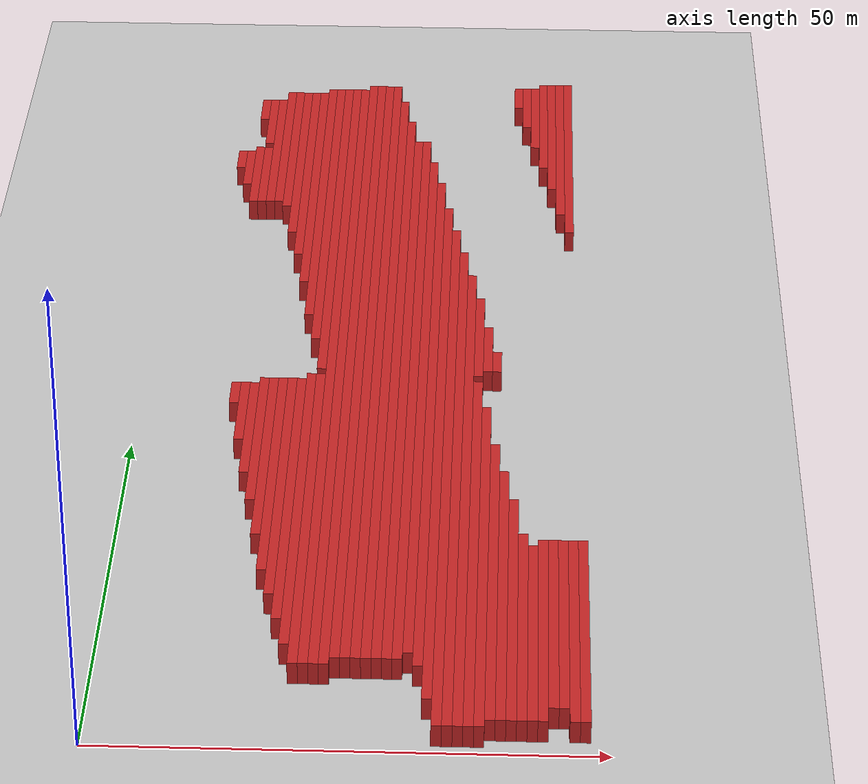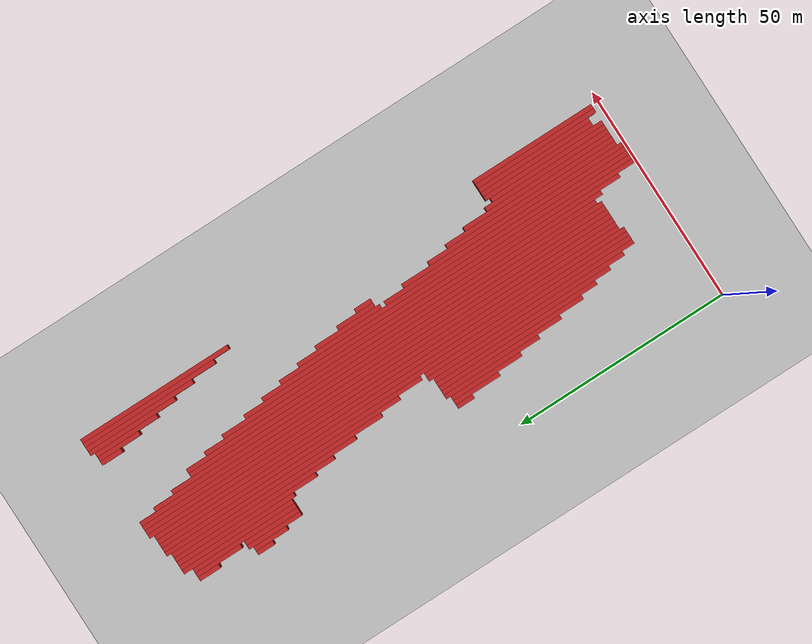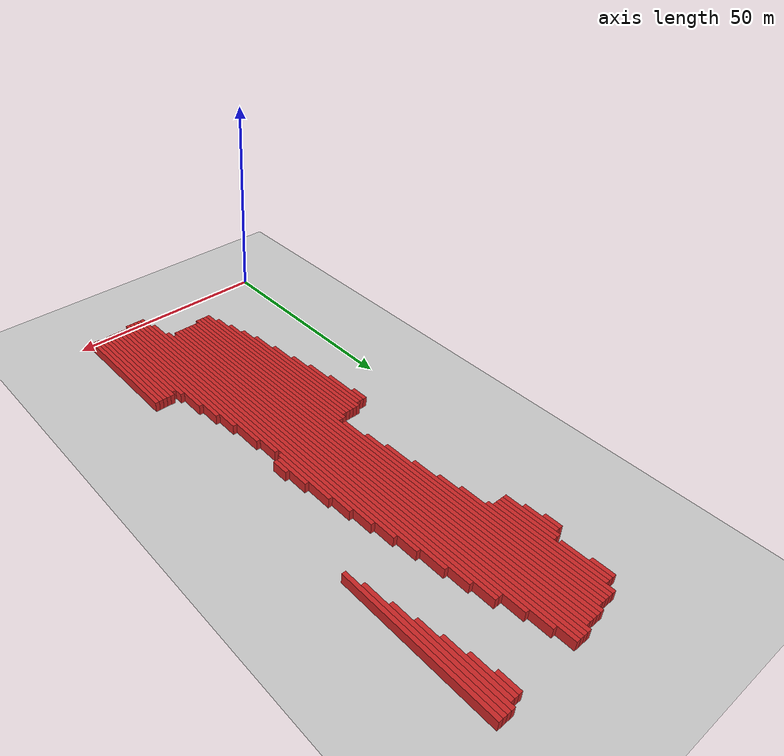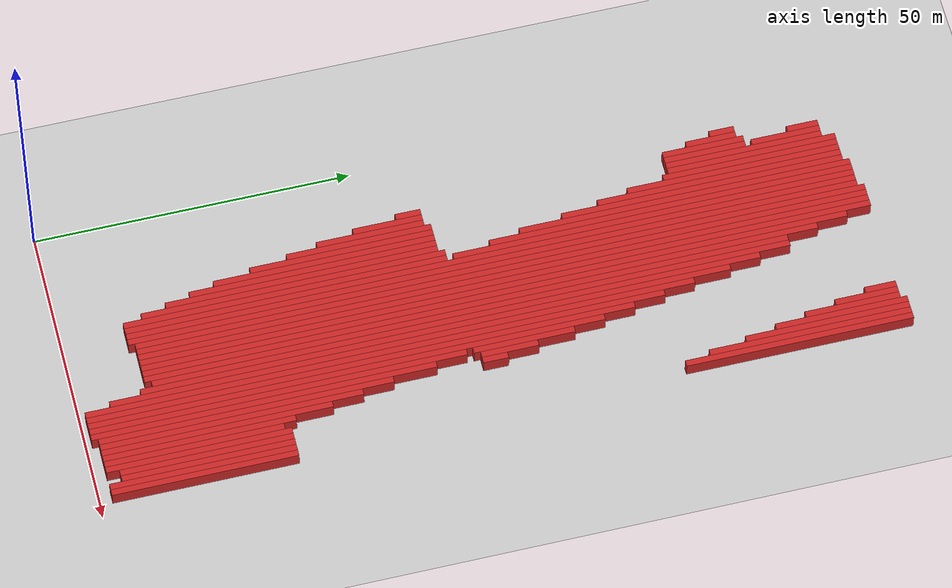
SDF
<sdf version="1.4">
 <world name="1_wall">
  <model name="ground_plane">
   <static>1</static>
   <link name="link">
    <collision name="collision">
     <geometry><plane><normal>0 0 1</normal><size>1000 1000</size></plane></geometry>
     <surface><friction><ode><mu>100</mu><mu2>50</mu2></ode></friction></surface>
    </collision>
    <visual name="visual">
     <cast_shadows>0</cast_shadows>
     <geometry><plane><normal>0 0 1</normal><size>10000 10000</size></plane></geometry>
     <material>
      <script><uri>file://media/materials/scripts/gazebo.material</uri><name>Gazebo/Grey</name></script>
     </material>
    </visual>
    <velocity_decay><linear>0</linear><angular>0</angular></velocity_decay>
   </link>
  </model>
  <model name="Wall_0">
   <static>1</static>
   <link name="Wall_0">
    <collision name="Wall_Collision_0">
     <geometry><box><size>4.0 1.0 2.5</size></box></geometry>
     <pose>0 0 1.25 0 -0 0</pose>
    </collision>
    <visual name="Wall_Visual_0">
     <pose>0 0 1.25 0 -0 0</pose>
     <geometry><box><size>4.0 1.0 2.5</size></box></geometry>
     <material>
      <script><uri>file://media/materials/scripts/gazebo.material</uri><name>Gazebo/Red</name></script>
     </material>
    </visual>
    <velocity_decay><linear>0</linear><angular>0</angular></velocity_decay>
    <pose>7.5 108.0 0 0 0 1.5707963267948966</pose>
   </link>
  </model>
  <model name="Wall_1">
   <static>1</static>
   <link name="Wall_1">
    <collision name="Wall_Collision_1">
     <geometry><box><size>8.0 1.0 2.5</size></box></geometry>
     <pose>0 0 1.25 0 -0 0</pose>
    </collision>
    <visual name="Wall_Visual_1">
     <pose>0 0 1.25 0 -0 0</pose>
     <geometry><box><size>8.0 1.0 2.5</size></box></geometry>
     <material>
      <script><uri>file://media/materials/scripts/gazebo.material</uri><name>Gazebo/Red</name></script>
     </material>
    </visual>
    <velocity_decay><linear>0</linear><angular>0</angular></velocity_decay>
    <pose>8.5 106.0 0 0 0 1.5707963267948966</pose>
   </link>
  </model>
  <model name="Wall_2">
   <static>1</static>
   <link name="Wall_2">
    <collision name="Wall_Collision_2">
     <geometry><box><size>13.0 1.0 2.5</size></box></geometry>
     <pose>0 0 1.25 0 -0 0</pose>
    </collision>
    <visual name="Wall_Visual_2">
     <pose>0 0 1.25 0 -0 0</pose>
     <geometry><box><size>13.0 1.0 2.5</size></box></geometry>
     <material>
      <script><uri>file://media/materials/scripts/gazebo.material</uri><name>Gazebo/Red</name></script>
     </material>
    </visual>
    <velocity_decay><linear>0</linear><angular>0</angular></velocity_decay>
    <pose>9.5 104.5 0 0 0 1.5707963267948966</pose>
   </link>
  </model>
  <model name="Wall_3">
   <static>1</static>
   <link name="Wall_3">
    <collision name="Wall_Collision_3">
     <geometry><box><size>5.0 1.0 2.5</size></box></geometry>
     <pose>0 0 1.25 0 -0 0</pose>
    </collision>
    <visual name="Wall_Visual_3">
     <pose>0 0 1.25 0 -0 0</pose>
     <geometry><box><size>5.0 1.0 2.5</size></box></geometry>
     <material>
      <script><uri>file://media/materials/scripts/gazebo.material</uri><name>Gazebo/Red</name></script>
     </material>
    </visual>
    <velocity_decay><linear>0</linear><angular>0</angular></velocity_decay>
    <pose>9.5 120.5 0 0 0 1.5707963267948966</pose>
   </link>
  </model>
  <model name="Wall_4">
   <static>1</static>
   <link name="Wall_4">
    <collision name="Wall_Collision_4">
     <geometry><box><size>4.0 1.0 2.5</size></box></geometry>
     <pose>0 0 1.25 0 -0 0</pose>
    </collision>
    <visual name="Wall_Visual_4">
     <pose>0 0 1.25 0 -0 0</pose>
     <geometry><box><size>4.0 1.0 2.5</size></box></geometry>
     <material>
      <script><uri>file://media/materials/scripts/gazebo.material</uri><name>Gazebo/Red</name></script>
     </material>
    </visual>
    <velocity_decay><linear>0</linear><angular>0</angular></velocity_decay>
    <pose>10.5 57.0 0 0 0 1.5707963267948966</pose>
   </link>
  </model>
  <model name="Wall_5">
   <static>1</static>
   <link name="Wall_5">
    <collision name="Wall_Collision_5">
     <geometry><box><size>13.0 1.0 2.5</size></box></geometry>
     <pose>0 0 1.25 0 -0 0</pose>
    </collision>
    <visual name="Wall_Visual_5">
     <pose>0 0 1.25 0 -0 0</pose>
     <geometry><box><size>13.0 1.0 2.5</size></box></geometry>
     <material>
      <script><uri>file://media/materials/scripts/gazebo.material</uri><name>Gazebo/Red</name></script>
     </material>
    </visual>
    <velocity_decay><linear>0</linear><angular>0</angular></velocity_decay>
    <pose>10.5 104.5 0 0 0 1.5707963267948966</pose>
   </link>
  </model>
  <model name="Wall_6">
   <static>1</static>
   <link name="Wall_6">
    <collision name="Wall_Collision_6">
     <geometry><box><size>11.0 1.0 2.5</size></box></geometry>
     <pose>0 0 1.25 0 -0 0</pose>
    </collision>
    <visual name="Wall_Visual_6">
     <pose>0 0 1.25 0 -0 0</pose>
     <geometry><box><size>11.0 1.0 2.5</size></box></geometry>
     <material>
      <script><uri>file://media/materials/scripts/gazebo.material</uri><name>Gazebo/Red</name></script>
     </material>
    </visual>
    <velocity_decay><linear>0</linear><angular>0</angular></velocity_decay>
    <pose>10.5 117.5 0 0 0 1.5707963267948966</pose>
   </link>
  </model>
  <model name="Wall_7">
   <static>1</static>
   <link name="Wall_7">
    <collision name="Wall_Collision_7">
     <geometry><box><size>11.0 1.0 2.5</size></box></geometry>
     <pose>0 0 1.25 0 -0 0</pose>
    </collision>
    <visual name="Wall_Visual_7">
     <pose>0 0 1.25 0 -0 0</pose>
     <geometry><box><size>11.0 1.0 2.5</size></box></geometry>
     <material>
      <script><uri>file://media/materials/scripts/gazebo.material</uri><name>Gazebo/Red</name></script>
     </material>
    </visual>
    <velocity_decay><linear>0</linear><angular>0</angular></velocity_decay>
    <pose>11.5 53.5 0 0 0 1.5707963267948966</pose>
   </link>
  </model>
  <model name="Wall_8">
   <static>1</static>
   <link name="Wall_8">
    <collision name="Wall_Collision_8">
     <geometry><box><size>25.0 1.0 2.5</size></box></geometry>
     <pose>0 0 1.25 0 -0 0</pose>
    </collision>
    <visual name="Wall_Visual_8">
     <pose>0 0 1.25 0 -0 0</pose>
     <geometry><box><size>25.0 1.0 2.5</size></box></geometry>
     <material>
      <script><uri>file://media/materials/scripts/gazebo.material</uri><name>Gazebo/Red</name></script>
     </material>
    </visual>
    <velocity_decay><linear>0</linear><angular>0</angular></velocity_decay>
    <pose>11.5 110.5 0 0 0 1.5707963267948966</pose>
   </link>
  </model>
  <model name="Wall_9">
   <static>1</static>
   <link name="Wall_9">
    <collision name="Wall_Collision_9">
     <geometry><box><size>17.0 1.0 2.5</size></box></geometry>
     <pose>0 0 1.25 0 -0 0</pose>
    </collision>
    <visual name="Wall_Visual_9">
     <pose>0 0 1.25 0 -0 0</pose>
     <geometry><box><size>17.0 1.0 2.5</size></box></geometry>
     <material>
      <script><uri>file://media/materials/scripts/gazebo.material</uri><name>Gazebo/Red</name></script>
     </material>
    </visual>
    <velocity_decay><linear>0</linear><angular>0</angular></velocity_decay>
    <pose>12.5 50.5 0 0 0 1.5707963267948966</pose>
   </link>
  </model>
  <model name="Wall_10">
   <static>1</static>
   <link name="Wall_10">
    <collision name="Wall_Collision_10">
     <geometry><box><size>27.0 1.0 2.5</size></box></geometry>
     <pose>0 0 1.25 0 -0 0</pose>
    </collision>
    <visual name="Wall_Visual_10">
     <pose>0 0 1.25 0 -0 0</pose>
     <geometry><box><size>27.0 1.0 2.5</size></box></geometry>
     <material>
      <script><uri>file://media/materials/scripts/gazebo.material</uri><name>Gazebo/Red</name></script>
     </material>
    </visual>
    <velocity_decay><linear>0</linear><angular>0</angular></velocity_decay>
    <pose>12.5 111.5 0 0 0 1.5707963267948966</pose>
   </link>
  </model>
  <model name="Wall_11">
   <static>1</static>
   <link name="Wall_11">
    <collision name="Wall_Collision_11">
     <geometry><box><size>23.0 1.0 2.5</size></box></geometry>
     <pose>0 0 1.25 0 -0 0</pose>
    </collision>
    <visual name="Wall_Visual_11">
     <pose>0 0 1.25 0 -0 0</pose>
     <geometry><box><size>23.0 1.0 2.5</size></box></geometry>
     <material>
      <script><uri>file://media/materials/scripts/gazebo.material</uri><name>Gazebo/Red</name></script>
     </material>
    </visual>
    <velocity_decay><linear>0</linear><angular>0</angular></velocity_decay>
    <pose>13.5 48.5 0 0 0 1.5707963267948966</pose>
   </link>
  </model>
  <model name="Wall_12">
   <static>1</static>
   <link name="Wall_12">
    <collision name="Wall_Collision_12">
     <geometry><box><size>28.0 1.0 2.5</size></box></geometry>
     <pose>0 0 1.25 0 -0 0</pose>
    </collision>
    <visual name="Wall_Visual_12">
     <pose>0 0 1.25 0 -0 0</pose>
     <geometry><box><size>28.0 1.0 2.5</size></box></geometry>
     <material>
      <script><uri>file://media/materials/scripts/gazebo.material</uri><name>Gazebo/Red</name></script>
     </material>
    </visual>
    <velocity_decay><linear>0</linear><angular>0</angular></velocity_decay>
    <pose>13.5 111.0 0 0 0 1.5707963267948966</pose>
   </link>
  </model>
  <model name="Wall_13">
   <static>1</static>
   <link name="Wall_13">
    <collision name="Wall_Collision_13">
     <geometry><box><size>29.0 1.0 2.5</size></box></geometry>
     <pose>0 0 1.25 0 -0 0</pose>
    </collision>
    <visual name="Wall_Visual_13">
     <pose>0 0 1.25 0 -0 0</pose>
     <geometry><box><size>29.0 1.0 2.5</size></box></geometry>
     <material>
      <script><uri>file://media/materials/scripts/gazebo.material</uri><name>Gazebo/Red</name></script>
     </material>
    </visual>
    <velocity_decay><linear>0</linear><angular>0</angular></velocity_decay>
    <pose>14.5 45.5 0 0 0 1.5707963267948966</pose>
   </link>
  </model>
  <model name="Wall_14">
   <static>1</static>
   <link name="Wall_14">
    <collision name="Wall_Collision_14">
     <geometry><box><size>34.0 1.0 2.5</size></box></geometry>
     <pose>0 0 1.25 0 -0 0</pose>
    </collision>
    <visual name="Wall_Visual_14">
     <pose>0 0 1.25 0 -0 0</pose>
     <geometry><box><size>34.0 1.0 2.5</size></box></geometry>
     <material>
      <script><uri>file://media/materials/scripts/gazebo.material</uri><name>Gazebo/Red</name></script>
     </material>
    </visual>
    <velocity_decay><linear>0</linear><angular>0</angular></velocity_decay>
    <pose>14.5 108.0 0 0 0 1.5707963267948966</pose>
   </link>
  </model>
  <model name="Wall_15">
   <static>1</static>
   <link name="Wall_15">
    <collision name="Wall_Collision_15">
     <geometry><box><size>35.0 1.0 2.5</size></box></geometry>
     <pose>0 0 1.25 0 -0 0</pose>
    </collision>
    <visual name="Wall_Visual_15">
     <pose>0 0 1.25 0 -0 0</pose>
     <geometry><box><size>35.0 1.0 2.5</size></box></geometry>
     <material>
      <script><uri>file://media/materials/scripts/gazebo.material</uri><name>Gazebo/Red</name></script>
     </material>
    </visual>
    <velocity_decay><linear>0</linear><angular>0</angular></velocity_decay>
    <pose>15.5 42.5 0 0 0 1.5707963267948966</pose>
   </link>
  </model>
  <model name="Wall_16">
   <static>1</static>
   <link name="Wall_16">
    <collision name="Wall_Collision_16">
     <geometry><box><size>39.0 1.0 2.5</size></box></geometry>
     <pose>0 0 1.25 0 -0 0</pose>
    </collision>
    <visual name="Wall_Visual_16">
     <pose>0 0 1.25 0 -0 0</pose>
     <geometry><box><size>39.0 1.0 2.5</size></box></geometry>
     <material>
      <script><uri>file://media/materials/scripts/gazebo.material</uri><name>Gazebo/Red</name></script>
     </material>
    </visual>
    <velocity_decay><linear>0</linear><angular>0</angular></velocity_decay>
    <pose>15.5 105.5 0 0 0 1.5707963267948966</pose>
   </link>
  </model>
  <model name="Wall_17">
   <static>1</static>
   <link name="Wall_17">
    <collision name="Wall_Collision_17">
     <geometry><box><size>39.0 1.0 2.5</size></box></geometry>
     <pose>0 0 1.25 0 -0 0</pose>
    </collision>
    <visual name="Wall_Visual_17">
     <pose>0 0 1.25 0 -0 0</pose>
     <geometry><box><size>39.0 1.0 2.5</size></box></geometry>
     <material>
      <script><uri>file://media/materials/scripts/gazebo.material</uri><name>Gazebo/Red</name></script>
     </material>
    </visual>
    <velocity_decay><linear>0</linear><angular>0</angular></velocity_decay>
    <pose>16.5 40.5 0 0 0 1.5707963267948966</pose>
   </link>
  </model>
  <model name="Wall_18">
   <static>1</static>
   <link name="Wall_18">
    <collision name="Wall_Collision_18">
     <geometry><box><size>45.0 1.0 2.5</size></box></geometry>
     <pose>0 0 1.25 0 -0 0</pose>
    </collision>
    <visual name="Wall_Visual_18">
     <pose>0 0 1.25 0 -0 0</pose>
     <geometry><box><size>45.0 1.0 2.5</size></box></geometry>
     <material>
      <script><uri>file://media/materials/scripts/gazebo.material</uri><name>Gazebo/Red</name></script>
     </material>
    </visual>
    <velocity_decay><linear>0</linear><angular>0</angular></velocity_decay>
    <pose>16.5 102.5 0 0 0 1.5707963267948966</pose>
   </link>
  </model>
  <model name="Wall_19">
   <static>1</static>
   <link name="Wall_19">
    <collision name="Wall_Collision_19">
     <geometry><box><size>43.0 1.0 2.5</size></box></geometry>
     <pose>0 0 1.25 0 -0 0</pose>
    </collision>
    <visual name="Wall_Visual_19">
     <pose>0 0 1.25 0 -0 0</pose>
     <geometry><box><size>43.0 1.0 2.5</size></box></geometry>
     <material>
      <script><uri>file://media/materials/scripts/gazebo.material</uri><name>Gazebo/Red</name></script>
     </material>
    </visual>
    <velocity_decay><linear>0</linear><angular>0</angular></velocity_decay>
    <pose>17.5 38.5 0 0 0 1.5707963267948966</pose>
   </link>
  </model>
  <model name="Wall_20">
   <static>1</static>
   <link name="Wall_20">
    <collision name="Wall_Collision_20">
     <geometry><box><size>53.0 1.0 2.5</size></box></geometry>
     <pose>0 0 1.25 0 -0 0</pose>
    </collision>
    <visual name="Wall_Visual_20">
     <pose>0 0 1.25 0 -0 0</pose>
     <geometry><box><size>53.0 1.0 2.5</size></box></geometry>
     <material>
      <script><uri>file://media/materials/scripts/gazebo.material</uri><name>Gazebo/Red</name></script>
     </material>
    </visual>
    <velocity_decay><linear>0</linear><angular>0</angular></velocity_decay>
    <pose>17.5 99.5 0 0 0 1.5707963267948966</pose>
   </link>
  </model>
  <model name="Wall_21">
   <static>1</static>
   <link name="Wall_21">
    <collision name="Wall_Collision_21">
     <geometry><box><size>48.0 1.0 2.5</size></box></geometry>
     <pose>0 0 1.25 0 -0 0</pose>
    </collision>
    <visual name="Wall_Visual_21">
     <pose>0 0 1.25 0 -0 0</pose>
     <geometry><box><size>48.0 1.0 2.5</size></box></geometry>
     <material>
      <script><uri>file://media/materials/scripts/gazebo.material</uri><name>Gazebo/Red</name></script>
     </material>
    </visual>
    <velocity_decay><linear>0</linear><angular>0</angular></velocity_decay>
    <pose>18.5 37.0 0 0 0 1.5707963267948966</pose>
   </link>
  </model>
  <model name="Wall_22">
   <static>1</static>
   <link name="Wall_22">
    <collision name="Wall_Collision_22">
     <geometry><box><size>58.0 1.0 2.5</size></box></geometry>
     <pose>0 0 1.25 0 -0 0</pose>
    </collision>
    <visual name="Wall_Visual_22">
     <pose>0 0 1.25 0 -0 0</pose>
     <geometry><box><size>58.0 1.0 2.5</size></box></geometry>
     <material>
      <script><uri>file://media/materials/scripts/gazebo.material</uri><name>Gazebo/Red</name></script>
     </material>
    </visual>
    <velocity_decay><linear>0</linear><angular>0</angular></velocity_decay>
    <pose>18.5 97.0 0 0 0 1.5707963267948966</pose>
   </link>
  </model>
  <model name="Wall_23">
   <static>1</static>
   <link name="Wall_23">
    <collision name="Wall_Collision_23">
     <geometry><box><size>51.0 1.0 2.5</size></box></geometry>
     <pose>0 0 1.25 0 -0 0</pose>
    </collision>
    <visual name="Wall_Visual_23">
     <pose>0 0 1.25 0 -0 0</pose>
     <geometry><box><size>51.0 1.0 2.5</size></box></geometry>
     <material>
      <script><uri>file://media/materials/scripts/gazebo.material</uri><name>Gazebo/Red</name></script>
     </material>
    </visual>
    <velocity_decay><linear>0</linear><angular>0</angular></velocity_decay>
    <pose>19.5 35.5 0 0 0 1.5707963267948966</pose>
   </link>
  </model>
  <model name="Wall_24">
   <static>1</static>
   <link name="Wall_24">
    <collision name="Wall_Collision_24">
     <geometry><box><size>64.0 1.0 2.5</size></box></geometry>
     <pose>0 0 1.25 0 -0 0</pose>
    </collision>
    <visual name="Wall_Visual_24">
     <pose>0 0 1.25 0 -0 0</pose>
     <geometry><box><size>64.0 1.0 2.5</size></box></geometry>
     <material>
      <script><uri>file://media/materials/scripts/gazebo.material</uri><name>Gazebo/Red</name></script>
     </material>
    </visual>
    <velocity_decay><linear>0</linear><angular>0</angular></velocity_decay>
    <pose>19.5 94.0 0 0 0 1.5707963267948966</pose>
   </link>
  </model>
  <model name="Wall_25">
   <static>1</static>
   <link name="Wall_25">
    <collision name="Wall_Collision_25">
     <geometry><box><size>116.0 1.0 2.5</size></box></geometry>
     <pose>0 0 1.25 0 -0 0</pose>
    </collision>
    <visual name="Wall_Visual_25">
     <pose>0 0 1.25 0 -0 0</pose>
     <geometry><box><size>116.0 1.0 2.5</size></box></geometry>
     <material>
      <script><uri>file://media/materials/scripts/gazebo.material</uri><name>Gazebo/Red</name></script>
     </material>
    </visual>
    <velocity_decay><linear>0</linear><angular>0</angular></velocity_decay>
    <pose>20.5 68.0 0 0 0 1.5707963267948966</pose>
   </link>
  </model>
  <model name="Wall_26">
   <static>1</static>
   <link name="Wall_26">
    <collision name="Wall_Collision_26">
     <geometry><box><size>116.0 1.0 2.5</size></box></geometry>
     <pose>0 0 1.25 0 -0 0</pose>
    </collision>
    <visual name="Wall_Visual_26">
     <pose>0 0 1.25 0 -0 0</pose>
     <geometry><box><size>116.0 1.0 2.5</size></box></geometry>
     <material>
      <script><uri>file://media/materials/scripts/gazebo.material</uri><name>Gazebo/Red</name></script>
     </material>
    </visual>
    <velocity_decay><linear>0</linear><angular>0</angular></velocity_decay>
    <pose>21.5 68.0 0 0 0 1.5707963267948966</pose>
   </link>
  </model>
  <model name="Wall_27">
   <static>1</static>
   <link name="Wall_27">
    <collision name="Wall_Collision_27">
     <geometry><box><size>117.0 1.0 2.5</size></box></geometry>
     <pose>0 0 1.25 0 -0 0</pose>
    </collision>
    <visual name="Wall_Visual_27">
     <pose>0 0 1.25 0 -0 0</pose>
     <geometry><box><size>117.0 1.0 2.5</size></box></geometry>
     <material>
      <script><uri>file://media/materials/scripts/gazebo.material</uri><name>Gazebo/Red</name></script>
     </material>
    </visual>
    <velocity_decay><linear>0</linear><angular>0</angular></velocity_decay>
    <pose>22.5 68.5 0 0 0 1.5707963267948966</pose>
   </link>
  </model>
  <model name="Wall_28">
   <static>1</static>
   <link name="Wall_28">
    <collision name="Wall_Collision_28">
     <geometry><box><size>116.0 1.0 2.5</size></box></geometry>
     <pose>0 0 1.25 0 -0 0</pose>
    </collision>
    <visual name="Wall_Visual_28">
     <pose>0 0 1.25 0 -0 0</pose>
     <geometry><box><size>116.0 1.0 2.5</size></box></geometry>
     <material>
      <script><uri>file://media/materials/scripts/gazebo.material</uri><name>Gazebo/Red</name></script>
     </material>
    </visual>
    <velocity_decay><linear>0</linear><angular>0</angular></velocity_decay>
    <pose>23.5 69.0 0 0 0 1.5707963267948966</pose>
   </link>
  </model>
  <model name="Wall_29">
   <static>1</static>
   <link name="Wall_29">
    <collision name="Wall_Collision_29">
     <geometry><box><size>116.0 1.0 2.5</size></box></geometry>
     <pose>0 0 1.25 0 -0 0</pose>
    </collision>
    <visual name="Wall_Visual_29">
     <pose>0 0 1.25 0 -0 0</pose>
     <geometry><box><size>116.0 1.0 2.5</size></box></geometry>
     <material>
      <script><uri>file://media/materials/scripts/gazebo.material</uri><name>Gazebo/Red</name></script>
     </material>
    </visual>
    <velocity_decay><linear>0</linear><angular>0</angular></velocity_decay>
    <pose>24.5 69.0 0 0 0 1.5707963267948966</pose>
   </link>
  </model>
  <model name="Wall_30">
   <static>1</static>
   <link name="Wall_30">
    <collision name="Wall_Collision_30">
     <geometry><box><size>116.0 1.0 2.5</size></box></geometry>
     <pose>0 0 1.25 0 -0 0</pose>
    </collision>
    <visual name="Wall_Visual_30">
     <pose>0 0 1.25 0 -0 0</pose>
     <geometry><box><size>116.0 1.0 2.5</size></box></geometry>
     <material>
      <script><uri>file://media/materials/scripts/gazebo.material</uri><name>Gazebo/Red</name></script>
     </material>
    </visual>
    <velocity_decay><linear>0</linear><angular>0</angular></velocity_decay>
    <pose>25.5 69.0 0 0 0 1.5707963267948966</pose>
   </link>
  </model>
  <model name="Wall_31">
   <static>1</static>
   <link name="Wall_31">
    <collision name="Wall_Collision_31">
     <geometry><box><size>112.0 1.0 2.5</size></box></geometry>
     <pose>0 0 1.25 0 -0 0</pose>
    </collision>
    <visual name="Wall_Visual_31">
     <pose>0 0 1.25 0 -0 0</pose>
     <geometry><box><size>112.0 1.0 2.5</size></box></geometry>
     <material>
      <script><uri>file://media/materials/scripts/gazebo.material</uri><name>Gazebo/Red</name></script>
     </material>
    </visual>
    <velocity_decay><linear>0</linear><angular>0</angular></velocity_decay>
    <pose>26.5 67.0 0 0 0 1.5707963267948966</pose>
   </link>
  </model>
  <model name="Wall_32">
   <static>1</static>
   <link name="Wall_32">
    <collision name="Wall_Collision_32">
     <geometry><box><size>107.0 1.0 2.5</size></box></geometry>
     <pose>0 0 1.25 0 -0 0</pose>
    </collision>
    <visual name="Wall_Visual_32">
     <pose>0 0 1.25 0 -0 0</pose>
     <geometry><box><size>107.0 1.0 2.5</size></box></geometry>
     <material>
      <script><uri>file://media/materials/scripts/gazebo.material</uri><name>Gazebo/Red</name></script>
     </material>
    </visual>
    <velocity_decay><linear>0</linear><angular>0</angular></velocity_decay>
    <pose>27.5 64.5 0 0 0 1.5707963267948966</pose>
   </link>
  </model>
  <model name="Wall_33">
   <static>1</static>
   <link name="Wall_33">
    <collision name="Wall_Collision_33">
     <geometry><box><size>102.0 1.0 2.5</size></box></geometry>
     <pose>0 0 1.25 0 -0 0</pose>
    </collision>
    <visual name="Wall_Visual_33">
     <pose>0 0 1.25 0 -0 0</pose>
     <geometry><box><size>102.0 1.0 2.5</size></box></geometry>
     <material>
      <script><uri>file://media/materials/scripts/gazebo.material</uri><name>Gazebo/Red</name></script>
     </material>
    </visual>
    <velocity_decay><linear>0</linear><angular>0</angular></velocity_decay>
    <pose>28.5 62.0 0 0 0 1.5707963267948966</pose>
   </link>
  </model>
  <model name="Wall_34">
   <static>1</static>
   <link name="Wall_34">
    <collision name="Wall_Collision_34">
     <geometry><box><size>102.0 1.0 2.5</size></box></geometry>
     <pose>0 0 1.25 0 -0 0</pose>
    </collision>
    <visual name="Wall_Visual_34">
     <pose>0 0 1.25 0 -0 0</pose>
     <geometry><box><size>102.0 1.0 2.5</size></box></geometry>
     <material>
      <script><uri>file://media/materials/scripts/gazebo.material</uri><name>Gazebo/Red</name></script>
     </material>
    </visual>
    <velocity_decay><linear>0</linear><angular>0</angular></velocity_decay>
    <pose>29.5 62.0 0 0 0 1.5707963267948966</pose>
   </link>
  </model>
  <model name="Wall_35">
   <static>1</static>
   <link name="Wall_35">
    <collision name="Wall_Collision_35">
     <geometry><box><size>96.0 1.0 2.5</size></box></geometry>
     <pose>0 0 1.25 0 -0 0</pose>
    </collision>
    <visual name="Wall_Visual_35">
     <pose>0 0 1.25 0 -0 0</pose>
     <geometry><box><size>96.0 1.0 2.5</size></box></geometry>
     <material>
      <script><uri>file://media/materials/scripts/gazebo.material</uri><name>Gazebo/Red</name></script>
     </material>
    </visual>
    <velocity_decay><linear>0</linear><angular>0</angular></velocity_decay>
    <pose>30.5 60.0 0 0 0 1.5707963267948966</pose>
   </link>
  </model>
  <model name="Wall_36">
   <static>1</static>
   <link name="Wall_36">
    <collision name="Wall_Collision_36">
     <geometry><box><size>93.0 1.0 2.5</size></box></geometry>
     <pose>0 0 1.25 0 -0 0</pose>
    </collision>
    <visual name="Wall_Visual_36">
     <pose>0 0 1.25 0 -0 0</pose>
     <geometry><box><size>93.0 1.0 2.5</size></box></geometry>
     <material>
      <script><uri>file://media/materials/scripts/gazebo.material</uri><name>Gazebo/Red</name></script>
     </material>
    </visual>
    <velocity_decay><linear>0</linear><angular>0</angular></velocity_decay>
    <pose>31.5 56.5 0 0 0 1.5707963267948966</pose>
   </link>
  </model>
  <model name="Wall_37">
   <static>1</static>
   <link name="Wall_37">
    <collision name="Wall_Collision_37">
     <geometry><box><size>92.0 1.0 2.5</size></box></geometry>
     <pose>0 0 1.25 0 -0 0</pose>
    </collision>
    <visual name="Wall_Visual_37">
     <pose>0 0 1.25 0 -0 0</pose>
     <geometry><box><size>92.0 1.0 2.5</size></box></geometry>
     <material>
      <script><uri>file://media/materials/scripts/gazebo.material</uri><name>Gazebo/Red</name></script>
     </material>
    </visual>
    <velocity_decay><linear>0</linear><angular>0</angular></velocity_decay>
    <pose>32.5 51.0 0 0 0 1.5707963267948966</pose>
   </link>
  </model>
  <model name="Wall_38">
   <static>1</static>
   <link name="Wall_38">
    <collision name="Wall_Collision_38">
     <geometry><box><size>91.0 1.0 2.5</size></box></geometry>
     <pose>0 0 1.25 0 -0 0</pose>
    </collision>
    <visual name="Wall_Visual_38">
     <pose>0 0 1.25 0 -0 0</pose>
     <geometry><box><size>91.0 1.0 2.5</size></box></geometry>
     <material>
      <script><uri>file://media/materials/scripts/gazebo.material</uri><name>Gazebo/Red</name></script>
     </material>
    </visual>
    <velocity_decay><linear>0</linear><angular>0</angular></velocity_decay>
    <pose>33.5 46.5 0 0 0 1.5707963267948966</pose>
   </link>
  </model>
  <model name="Wall_39">
   <static>1</static>
   <link name="Wall_39">
    <collision name="Wall_Collision_39">
     <geometry><box><size>86.0 1.0 2.5</size></box></geometry>
     <pose>0 0 1.25 0 -0 0</pose>
    </collision>
    <visual name="Wall_Visual_39">
     <pose>0 0 1.25 0 -0 0</pose>
     <geometry><box><size>86.0 1.0 2.5</size></box></geometry>
     <material>
      <script><uri>file://media/materials/scripts/gazebo.material</uri><name>Gazebo/Red</name></script>
     </material>
    </visual>
    <velocity_decay><linear>0</linear><angular>0</angular></velocity_decay>
    <pose>34.5 44.0 0 0 0 1.5707963267948966</pose>
   </link>
  </model>
  <model name="Wall_40">
   <static>1</static>
   <link name="Wall_40">
    <collision name="Wall_Collision_40">
     <geometry><box><size>81.0 1.0 2.5</size></box></geometry>
     <pose>0 0 1.25 0 -0 0</pose>
    </collision>
    <visual name="Wall_Visual_40">
     <pose>0 0 1.25 0 -0 0</pose>
     <geometry><box><size>81.0 1.0 2.5</size></box></geometry>
     <material>
      <script><uri>file://media/materials/scripts/gazebo.material</uri><name>Gazebo/Red</name></script>
     </material>
    </visual>
    <velocity_decay><linear>0</linear><angular>0</angular></velocity_decay>
    <pose>35.5 41.5 0 0 0 1.5707963267948966</pose>
   </link>
  </model>
  <model name="Wall_41">
   <static>1</static>
   <link name="Wall_41">
    <collision name="Wall_Collision_41">
     <geometry><box><size>59.0 1.0 2.5</size></box></geometry>
     <pose>0 0 1.25 0 -0 0</pose>
    </collision>
    <visual name="Wall_Visual_41">
     <pose>0 0 1.25 0 -0 0</pose>
     <geometry><box><size>59.0 1.0 2.5</size></box></geometry>
     <material>
      <script><uri>file://media/materials/scripts/gazebo.material</uri><name>Gazebo/Red</name></script>
     </material>
    </visual>
    <velocity_decay><linear>0</linear><angular>0</angular></velocity_decay>
    <pose>36.5 30.5 0 0 0 1.5707963267948966</pose>
   </link>
  </model>
  <model name="Wall_42">
   <static>1</static>
   <link name="Wall_42">
    <collision name="Wall_Collision_42">
     <geometry><box><size>16.0 1.0 2.5</size></box></geometry>
     <pose>0 0 1.25 0 -0 0</pose>
    </collision>
    <visual name="Wall_Visual_42">
     <pose>0 0 1.25 0 -0 0</pose>
     <geometry><box><size>16.0 1.0 2.5</size></box></geometry>
     <material>
      <script><uri>file://media/materials/scripts/gazebo.material</uri><name>Gazebo/Red</name></script>
     </material>
    </visual>
    <velocity_decay><linear>0</linear><angular>0</angular></velocity_decay>
    <pose>36.5 69.0 0 0 0 1.5707963267948966</pose>
   </link>
  </model>
  <model name="Wall_43">
   <static>1</static>
   <link name="Wall_43">
    <collision name="Wall_Collision_43">
     <geometry><box><size>54.0 1.0 2.5</size></box></geometry>
     <pose>0 0 1.25 0 -0 0</pose>
    </collision>
    <visual name="Wall_Visual_43">
     <pose>0 0 1.25 0 -0 0</pose>
     <geometry><box><size>54.0 1.0 2.5</size></box></geometry>
     <material>
      <script><uri>file://media/materials/scripts/gazebo.material</uri><name>Gazebo/Red</name></script>
     </material>
    </visual>
    <velocity_decay><linear>0</linear><angular>0</angular></velocity_decay>
    <pose>37.5 28.0 0 0 0 1.5707963267948966</pose>
   </link>
  </model>
  <model name="Wall_44">
   <static>1</static>
   <link name="Wall_44">
    <collision name="Wall_Collision_44">
     <geometry><box><size>9.0 1.0 2.5</size></box></geometry>
     <pose>0 0 1.25 0 -0 0</pose>
    </collision>
    <visual name="Wall_Visual_44">
     <pose>0 0 1.25 0 -0 0</pose>
     <geometry><box><size>9.0 1.0 2.5</size></box></geometry>
     <material>
      <script><uri>file://media/materials/scripts/gazebo.material</uri><name>Gazebo/Red</name></script>
     </material>
    </visual>
    <velocity_decay><linear>0</linear><angular>0</angular></velocity_decay>
    <pose>37.5 66.5 0 0 0 1.5707963267948966</pose>
   </link>
  </model>
  <model name="Wall_45">
   <static>1</static>
   <link name="Wall_45">
    <collision name="Wall_Collision_45">
     <geometry><box><size>46.0 1.0 2.5</size></box></geometry>
     <pose>0 0 1.25 0 -0 0</pose>
    </collision>
    <visual name="Wall_Visual_45">
     <pose>0 0 1.25 0 -0 0</pose>
     <geometry><box><size>46.0 1.0 2.5</size></box></geometry>
     <material>
      <script><uri>file://media/materials/scripts/gazebo.material</uri><name>Gazebo/Red</name></script>
     </material>
    </visual>
    <velocity_decay><linear>0</linear><angular>0</angular></velocity_decay>
    <pose>38.5 25.0 0 0 0 1.5707963267948966</pose>
   </link>
  </model>
  <model name="Wall_46">
   <static>1</static>
   <link name="Wall_46">
    <collision name="Wall_Collision_46">
     <geometry><box><size>4.0 1.0 2.5</size></box></geometry>
     <pose>0 0 1.25 0 -0 0</pose>
    </collision>
    <visual name="Wall_Visual_46">
     <pose>0 0 1.25 0 -0 0</pose>
     <geometry><box><size>4.0 1.0 2.5</size></box></geometry>
     <material>
      <script><uri>file://media/materials/scripts/gazebo.material</uri><name>Gazebo/Red</name></script>
     </material>
    </visual>
    <velocity_decay><linear>0</linear><angular>0</angular></velocity_decay>
    <pose>38.5 64.0 0 0 0 1.5707963267948966</pose>
   </link>
  </model>
  <model name="Wall_47">
   <static>1</static>
   <link name="Wall_47">
    <collision name="Wall_Collision_47">
     <geometry><box><size>41.0 1.0 2.5</size></box></geometry>
     <pose>0 0 1.25 0 -0 0</pose>
    </collision>
    <visual name="Wall_Visual_47">
     <pose>0 0 1.25 0 -0 0</pose>
     <geometry><box><size>41.0 1.0 2.5</size></box></geometry>
     <material>
      <script><uri>file://media/materials/scripts/gazebo.material</uri><name>Gazebo/Red</name></script>
     </material>
    </visual>
    <velocity_decay><linear>0</linear><angular>0</angular></velocity_decay>
    <pose>39.5 22.5 0 0 0 1.5707963267948966</pose>
   </link>
  </model>
  <model name="Wall_48">
   <static>1</static>
   <link name="Wall_48">
    <collision name="Wall_Collision_48">
     <geometry><box><size>36.0 1.0 2.5</size></box></geometry>
     <pose>0 0 1.25 0 -0 0</pose>
    </collision>
    <visual name="Wall_Visual_48">
     <pose>0 0 1.25 0 -0 0</pose>
     <geometry><box><size>36.0 1.0 2.5</size></box></geometry>
     <material>
      <script><uri>file://media/materials/scripts/gazebo.material</uri><name>Gazebo/Red</name></script>
     </material>
    </visual>
    <velocity_decay><linear>0</linear><angular>0</angular></velocity_decay>
    <pose>40.5 20.0 0 0 0 1.5707963267948966</pose>
   </link>
  </model>
  <model name="Wall_49">
   <static>1</static>
   <link name="Wall_49">
    <collision name="Wall_Collision_49">
     <geometry><box><size>5.0 1.0 2.5</size></box></geometry>
     <pose>0 0 1.25 0 -0 0</pose>
    </collision>
    <visual name="Wall_Visual_49">
     <pose>0 0 1.25 0 -0 0</pose>
     <geometry><box><size>5.0 1.0 2.5</size></box></geometry>
     <material>
      <script><uri>file://media/materials/scripts/gazebo.material</uri><name>Gazebo/Red</name></script>
     </material>
    </visual>
    <velocity_decay><linear>0</linear><angular>0</angular></velocity_decay>
    <pose>40.5 124.5 0 0 0 1.5707963267948966</pose>
   </link>
  </model>
  <model name="Wall_50">
   <static>1</static>
   <link name="Wall_50">
    <collision name="Wall_Collision_50">
     <geometry><box><size>30.0 1.0 2.5</size></box></geometry>
     <pose>0 0 1.25 0 -0 0</pose>
    </collision>
    <visual name="Wall_Visual_50">
     <pose>0 0 1.25 0 -0 0</pose>
     <geometry><box><size>30.0 1.0 2.5</size></box></geometry>
     <material>
      <script><uri>file://media/materials/scripts/gazebo.material</uri><name>Gazebo/Red</name></script>
     </material>
    </visual>
    <velocity_decay><linear>0</linear><angular>0</angular></velocity_decay>
    <pose>41.5 17.0 0 0 0 1.5707963267948966</pose>
   </link>
  </model>
  <model name="Wall_51">
   <static>1</static>
   <link name="Wall_51">
    <collision name="Wall_Collision_51">
     <geometry><box><size>10.0 1.0 2.5</size></box></geometry>
     <pose>0 0 1.25 0 -0 0</pose>
    </collision>
    <visual name="Wall_Visual_51">
     <pose>0 0 1.25 0 -0 0</pose>
     <geometry><box><size>10.0 1.0 2.5</size></box></geometry>
     <material>
      <script><uri>file://media/materials/scripts/gazebo.material</uri><name>Gazebo/Red</name></script>
     </material>
    </visual>
    <velocity_decay><linear>0</linear><angular>0</angular></velocity_decay>
    <pose>41.5 122.0 0 0 0 1.5707963267948966</pose>
   </link>
  </model>
  <model name="Wall_52">
   <static>1</static>
   <link name="Wall_52">
    <collision name="Wall_Collision_52">
     <geometry><box><size>28.0 1.0 2.5</size></box></geometry>
     <pose>0 0 1.25 0 -0 0</pose>
    </collision>
    <visual name="Wall_Visual_52">
     <pose>0 0 1.25 0 -0 0</pose>
     <geometry><box><size>28.0 1.0 2.5</size></box></geometry>
     <material>
      <script><uri>file://media/materials/scripts/gazebo.material</uri><name>Gazebo/Red</name></script>
     </material>
    </visual>
    <velocity_decay><linear>0</linear><angular>0</angular></velocity_decay>
    <pose>42.5 16.0 0 0 0 1.5707963267948966</pose>
   </link>
  </model>
  <model name="Wall_53">
   <static>1</static>
   <link name="Wall_53">
    <collision name="Wall_Collision_53">
     <geometry><box><size>15.0 1.0 2.5</size></box></geometry>
     <pose>0 0 1.25 0 -0 0</pose>
    </collision>
    <visual name="Wall_Visual_53">
     <pose>0 0 1.25 0 -0 0</pose>
     <geometry><box><size>15.0 1.0 2.5</size></box></geometry>
     <material>
      <script><uri>file://media/materials/scripts/gazebo.material</uri><name>Gazebo/Red</name></script>
     </material>
    </visual>
    <velocity_decay><linear>0</linear><angular>0</angular></velocity_decay>
    <pose>42.5 119.5 0 0 0 1.5707963267948966</pose>
   </link>
  </model>
  <model name="Wall_54">
   <static>1</static>
   <link name="Wall_54">
    <collision name="Wall_Collision_54">
     <geometry><box><size>29.0 1.0 2.5</size></box></geometry>
     <pose>0 0 1.25 0 -0 0</pose>
    </collision>
    <visual name="Wall_Visual_54">
     <pose>0 0 1.25 0 -0 0</pose>
     <geometry><box><size>29.0 1.0 2.5</size></box></geometry>
     <material>
      <script><uri>file://media/materials/scripts/gazebo.material</uri><name>Gazebo/Red</name></script>
     </material>
    </visual>
    <velocity_decay><linear>0</linear><angular>0</angular></velocity_decay>
    <pose>43.5 16.5 0 0 0 1.5707963267948966</pose>
   </link>
  </model>
  <model name="Wall_55">
   <static>1</static>
   <link name="Wall_55">
    <collision name="Wall_Collision_55">
     <geometry><box><size>21.0 1.0 2.5</size></box></geometry>
     <pose>0 0 1.25 0 -0 0</pose>
    </collision>
    <visual name="Wall_Visual_55">
     <pose>0 0 1.25 0 -0 0</pose>
     <geometry><box><size>21.0 1.0 2.5</size></box></geometry>
     <material>
      <script><uri>file://media/materials/scripts/gazebo.material</uri><name>Gazebo/Red</name></script>
     </material>
    </visual>
    <velocity_decay><linear>0</linear><angular>0</angular></velocity_decay>
    <pose>43.5 117.5 0 0 0 1.5707963267948966</pose>
   </link>
  </model>
  <model name="Wall_56">
   <static>1</static>
   <link name="Wall_56">
    <collision name="Wall_Collision_56">
     <geometry><box><size>27.0 1.0 2.5</size></box></geometry>
     <pose>0 0 1.25 0 -0 0</pose>
    </collision>
    <visual name="Wall_Visual_56">
     <pose>0 0 1.25 0 -0 0</pose>
     <geometry><box><size>27.0 1.0 2.5</size></box></geometry>
     <material>
      <script><uri>file://media/materials/scripts/gazebo.material</uri><name>Gazebo/Red</name></script>
     </material>
    </visual>
    <velocity_decay><linear>0</linear><angular>0</angular></velocity_decay>
    <pose>44.5 17.5 0 0 0 1.5707963267948966</pose>
   </link>
  </model>
  <model name="Wall_57">
   <static>1</static>
   <link name="Wall_57">
    <collision name="Wall_Collision_57">
     <geometry><box><size>26.0 1.0 2.5</size></box></geometry>
     <pose>0 0 1.25 0 -0 0</pose>
    </collision>
    <visual name="Wall_Visual_57">
     <pose>0 0 1.25 0 -0 0</pose>
     <geometry><box><size>26.0 1.0 2.5</size></box></geometry>
     <material>
      <script><uri>file://media/materials/scripts/gazebo.material</uri><name>Gazebo/Red</name></script>
     </material>
    </visual>
    <velocity_decay><linear>0</linear><angular>0</angular></velocity_decay>
    <pose>44.5 115.0 0 0 0 1.5707963267948966</pose>
   </link>
  </model>
  <model name="Wall_58">
   <static>1</static>
   <link name="Wall_58">
    <collision name="Wall_Collision_58">
     <geometry><box><size>27.0 1.0 2.5</size></box></geometry>
     <pose>0 0 1.25 0 -0 0</pose>
    </collision>
    <visual name="Wall_Visual_58">
     <pose>0 0 1.25 0 -0 0</pose>
     <geometry><box><size>27.0 1.0 2.5</size></box></geometry>
     <material>
      <script><uri>file://media/materials/scripts/gazebo.material</uri><name>Gazebo/Red</name></script>
     </material>
    </visual>
    <velocity_decay><linear>0</linear><angular>0</angular></velocity_decay>
    <pose>45.5 17.5 0 0 0 1.5707963267948966</pose>
   </link>
  </model>
  <model name="Wall_59">
   <static>1</static>
   <link name="Wall_59">
    <collision name="Wall_Collision_59">
     <geometry><box><size>32.0 1.0 2.5</size></box></geometry>
     <pose>0 0 1.25 0 -0 0</pose>
    </collision>
    <visual name="Wall_Visual_59">
     <pose>0 0 1.25 0 -0 0</pose>
     <geometry><box><size>32.0 1.0 2.5</size></box></geometry>
     <material>
      <script><uri>file://media/materials/scripts/gazebo.material</uri><name>Gazebo/Red</name></script>
     </material>
    </visual>
    <velocity_decay><linear>0</linear><angular>0</angular></velocity_decay>
    <pose>45.5 112.0 0 0 0 1.5707963267948966</pose>
   </link>
  </model>
  <model name="Wall_60">
   <static>1</static>
   <link name="Wall_60">
    <collision name="Wall_Collision_60">
     <geometry><box><size>29.0 1.0 2.5</size></box></geometry>
     <pose>0 0 1.25 0 -0 0</pose>
    </collision>
    <visual name="Wall_Visual_60">
     <pose>0 0 1.25 0 -0 0</pose>
     <geometry><box><size>29.0 1.0 2.5</size></box></geometry>
     <material>
      <script><uri>file://media/materials/scripts/gazebo.material</uri><name>Gazebo/Red</name></script>
     </material>
    </visual>
    <velocity_decay><linear>0</linear><angular>0</angular></velocity_decay>
    <pose>46.5 16.5 0 0 0 1.5707963267948966</pose>
   </link>
  </model>
  <model name="Wall_61">
   <static>1</static>
   <link name="Wall_61">
    <collision name="Wall_Collision_61">
     <geometry><box><size>36.0 1.0 2.5</size></box></geometry>
     <pose>0 0 1.25 0 -0 0</pose>
    </collision>
    <visual name="Wall_Visual_61">
     <pose>0 0 1.25 0 -0 0</pose>
     <geometry><box><size>36.0 1.0 2.5</size></box></geometry>
     <material>
      <script><uri>file://media/materials/scripts/gazebo.material</uri><name>Gazebo/Red</name></script>
     </material>
    </visual>
    <velocity_decay><linear>0</linear><angular>0</angular></velocity_decay>
    <pose>46.5 110.0 0 0 0 1.5707963267948966</pose>
   </link>
  </model>
  <model name="Wall_62">
   <static>1</static>
   <link name="Wall_62">
    <collision name="Wall_Collision_62">
     <geometry><box><size>29.0 1.0 2.5</size></box></geometry>
     <pose>0 0 1.25 0 -0 0</pose>
    </collision>
    <visual name="Wall_Visual_62">
     <pose>0 0 1.25 0 -0 0</pose>
     <geometry><box><size>29.0 1.0 2.5</size></box></geometry>
     <material>
      <script><uri>file://media/materials/scripts/gazebo.material</uri><name>Gazebo/Red</name></script>
     </material>
    </visual>
    <velocity_decay><linear>0</linear><angular>0</angular></velocity_decay>
    <pose>47.5 16.5 0 0 0 1.5707963267948966</pose>
   </link>
  </model>
 </world>
</sdf>
